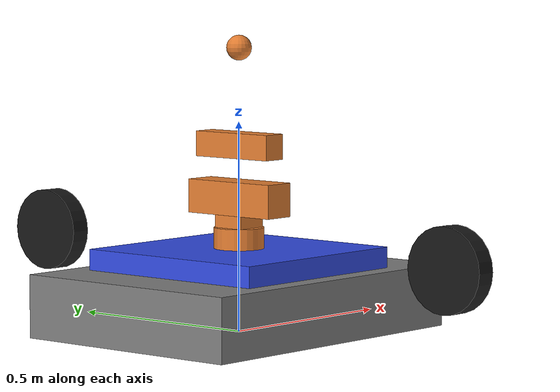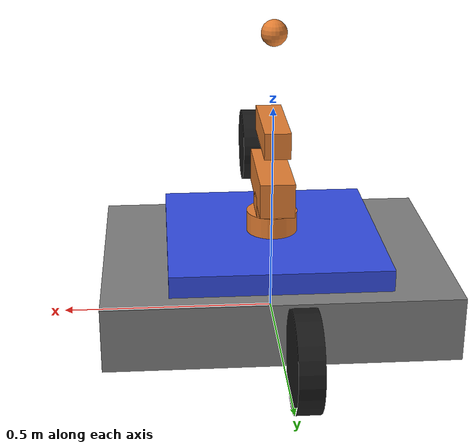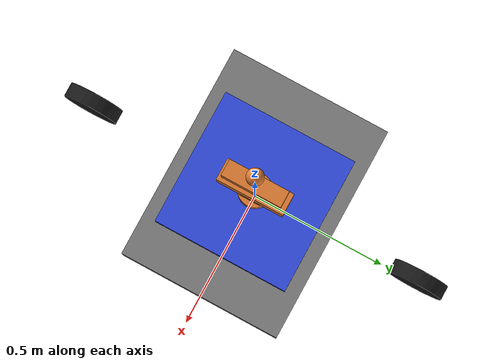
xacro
<?xml version="1.0"?>
<robot name="mobile_lift_arm" xmlns:xacro="http://www.ros.org/wiki/xacro">
  <!-- Include modules -->
  <xacro:include filename="$(find mobile_lift_arm)/urdf/base_vehicle.xacro"/>
  <xacro:include filename="$(find mobile_lift_arm)/urdf/scissor_lift.xacro"/>
  <xacro:include filename="$(find mobile_lift_arm)/urdf/robot_arm.xacro"/>

  <!-- Base -->
  <xacro:base_vehicle prefix=""/>

  <!-- Lift mounted on base_link -->
  <xacro:scissor_lift parent="base_link"/>

  <!-- 3-DOF Arm mounted on lift top -->
  <xacro:robot_arm parent="lift_top_link"/>

  <!-- Gazebo-ros2-control plugin -->
  <gazebo>
    <plugin name="gazebo_ros2_control" filename="libgazebo_ros2_control.so">
      <parameters>$(find mobile_lift_arm)/config/ros2_controllers.yaml</parameters>
    </plugin>
  </gazebo>

  <!-- ros2_control interface -->
  <ros2_control name="GazeboSystem" type="system">
    <hardware>
      <plugin>gazebo_ros2_control/GazeboSystem</plugin>
    </hardware>

    <!-- diff drive joints (velocity cmd) -->
    <joint name="left_wheel_joint">
      <command_interface name="velocity"/>
      <state_interface name="position"/>
      <state_interface name="velocity"/>
    </joint>
    <joint name="right_wheel_joint">
      <command_interface name="velocity"/>
      <state_interface name="position"/>
      <state_interface name="velocity"/>
    </joint>

    <!-- lift prismatic (position cmd) -->
    <joint name="lift_joint">
      <command_interface name="position"/>
      <state_interface name="position"/>
      <state_interface name="velocity"/>
    </joint>

    <!-- arm (position cmd via trajectory controller) -->
    <joint name="arm_shoulder_yaw_joint">
      <command_interface name="position"/>
      <state_interface name="position"/>
      <state_interface name="velocity"/>
    </joint>
    <joint name="arm_shoulder_pitch_joint">
      <command_interface name="position"/>
      <state_interface name="position"/>
      <state_interface name="velocity"/>
    </joint>
    <joint name="arm_elbow_joint">
      <command_interface name="position"/>
      <state_interface name="position"/>
      <state_interface name="velocity"/>
    </joint>
  </ros2_control>

  <!-- Gazebo material friction etc. -->
  <gazebo reference="base_link">
    <kp>500000.0</kp>
    <kd>10.0</kd>
  </gazebo>
</robot>

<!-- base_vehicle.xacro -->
<robot xmlns:xacro="http://www.ros.org/wiki/xacro">
  <xacro:macro name="base_vehicle" params="prefix:= base_width:=0.6 base_length:=0.8 base_height:=0.15 wheel_radius:=0.1 wheel_thickness:=0.05">
    <!-- Base link -->
    <link name="${prefix}base_link">
      <inertial>
        <origin xyz="0 0 ${base_height/2}" rpy="0 0 0"/>
        <mass value="20.0"/>
        <inertia ixx="0.6" ixy="0" ixz="0" iyy="0.6" iyz="0" izz="0.6"/>
      </inertial>
      <visual>
        <origin xyz="0 0 ${base_height/2}" rpy="0 0 0"/>
        <geometry>
          <box size="${base_length} ${base_width} ${base_height}"/>
        </geometry>
        <material name="gray"><color rgba="0.5 0.5 0.5 1"/></material>
      </visual>
      <collision>
        <origin xyz="0 0 ${base_height/2}" rpy="0 0 0"/>
        <geometry>
          <box size="${base_length} ${base_width} ${base_height}"/>
        </geometry>
      </collision>
    </link>

    <!-- Wheels (left/right) -->
    <link name="left_wheel_link">
      <inertial><mass value="2"/><inertia ixx="0.02" iyy="0.02" izz="0.02" ixy="0" ixz="0" iyz="0"/></inertial>
      <visual>
        <origin xyz="0 ${base_width/2 + wheel_thickness/2} ${wheel_radius}" rpy="0 1.5708 0"/>
        <geometry><cylinder radius="${wheel_radius}" length="${wheel_thickness}"/></geometry>
        <material name="black"><color rgba="0.1 0.1 0.1 1"/></material>
      </visual>
      <collision>
        <origin xyz="0 ${base_width/2 + wheel_thickness/2} ${wheel_radius}" rpy="0 1.5708 0"/>
        <geometry><cylinder radius="${wheel_radius}" length="${wheel_thickness}"/></geometry>
      </collision>
    </link>

    <link name="right_wheel_link">
      <inertial><mass value="2"/><inertia ixx="0.02" iyy="0.02" izz="0.02" ixy="0" ixz="0" iyz="0"/></inertial>
      <visual>
        <origin xyz="0 -${base_width/2 + wheel_thickness/2} ${wheel_radius}" rpy="0 1.5708 0"/>
        <geometry><cylinder radius="${wheel_radius}" length="${wheel_thickness}"/></geometry>
        <material name="black"><color rgba="0.1 0.1 0.1 1"/></material>
      </visual>
      <collision>
        <origin xyz="0 -${base_width/2 + wheel_thickness/2} ${wheel_radius}" rpy="0 1.5708 0"/>
        <geometry><cylinder radius="${wheel_radius}" length="${wheel_thickness}"/></geometry>
      </collision>
    </link>

    <joint name="left_wheel_joint" type="continuous">
      <parent link="${prefix}base_link"/>
      <child link="left_wheel_link"/>
      <origin xyz="0 ${base_width/2} ${wheel_radius}" rpy="0 0 0"/>
      <axis xyz="0 1 0"/>
      <limit effort="10" velocity="20"/>
    </joint>

    <joint name="right_wheel_joint" type="continuous">
      <parent link="${prefix}base_link"/>
      <child link="right_wheel_link"/>
      <origin xyz="0 -${base_width/2} ${wheel_radius}" rpy="0 0 0"/>
      <axis xyz="0 1 0"/>
      <limit effort="10" velocity="20"/>
    </joint>
  </xacro:macro>
</robot>

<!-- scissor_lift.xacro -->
<robot xmlns:xacro="http://www.ros.org/wiki/xacro">
  <xacro:macro name="scissor_lift" params="parent lift_height_min:=0.0 lift_height_max:=1.2 top_size_xy:=0.5 top_thickness:=0.05">
    <!-- Moving table (top platform) -->
    <link name="lift_link">
      <inertial>
        <origin xyz="0 0 ${top_thickness/2}" rpy="0 0 0"/>
        <mass value="8.0"/>
        <inertia ixx="0.08" ixy="0" ixz="0" iyy="0.08" iyz="0" izz="0.08"/>
      </inertial>
      <visual>
        <origin xyz="0 0 ${top_thickness/2}" rpy="0 0 0"/>
        <geometry>
          <box size="${top_size_xy} ${top_size_xy} ${top_thickness}"/>
        </geometry>
        <material name="blue"><color rgba="0.2 0.3 0.9 1"/></material>
      </visual>
      <collision>
        <origin xyz="0 0 ${top_thickness/2}" rpy="0 0 0"/>
        <geometry>
          <box size="${top_size_xy} ${top_size_xy} ${top_thickness}"/>
        </geometry>
      </collision>
    </link>

    <!-- Prismatic joint to simulate lift -->
    <joint name="lift_joint" type="prismatic">
      <parent link="${parent}"/>
      <child link="lift_link"/>
      <origin xyz="0 0 0.15" rpy="0 0 0"/>
      <axis xyz="0 0 1"/>
      <limit lower="${lift_height_min}" upper="${lift_height_max}" effort="500" velocity="0.2"/>
      <dynamics damping="5.0" friction="0.1"/>
    </joint>

    <!-- Top link for mounting the arm -->
    <link name="lift_top_link">
      <visual>
        <origin xyz="0 0 ${top_thickness}" rpy="0 0 0"/>
        <geometry><sphere radius="0.01"/></geometry>
        <material name="invisible"><color rgba="0 0 0 0"/></material>
      </visual>
    </link>

    <joint name="lift_top_fixed" type="fixed">
      <parent link="lift_link"/>
      <child link="lift_top_link"/>
    </joint>
  </xacro:macro>
</robot>

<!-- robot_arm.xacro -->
<robot xmlns:xacro="http://www.ros.org/wiki/xacro">
  <xacro:macro name="robot_arm" params="parent">
    <link name="arm_base_link">
      <inertial><mass value="3"/><inertia ixx="0.03" iyy="0.03" izz="0.03" ixy="0" ixz="0" iyz="0"/></inertial>
      <visual>
        <origin xyz="0 0 0.05" rpy="0 0 0"/>
        <geometry><cylinder radius="0.06" length="0.1"/></geometry>
        <material name="orange"><color rgba="0.9 0.5 0.2 1"/></material>
      </visual>
    </link>

    <joint name="arm_base_fixed" type="fixed">
      <parent link="${parent}"/>
      <child link="arm_base_link"/>
    </joint>

    <!-- Joint 1: shoulder yaw -->
    <link name="arm_shoulder_yaw_link">
      <inertial><mass value="2"/><inertia ixx="0.02" iyy="0.02" izz="0.02" ixy="0" ixz="0" iyz="0"/></inertial>
      <visual>
        <geometry><box size="0.08 0.08 0.15"/></geometry>
        <material name="orange"/>
      </visual>
    </link>
    <joint name="arm_shoulder_yaw_joint" type="revolute">
      <parent link="arm_base_link"/>
      <child link="arm_shoulder_yaw_link"/>
      <origin xyz="0 0 0.07" rpy="0 0 0"/>
      <axis xyz="0 0 1"/>
      <limit lower="-3.14" upper="3.14" effort="30" velocity="1.5"/>
      <dynamics damping="0.3"/>
    </joint>

    <!-- Joint 2: shoulder pitch -->
    <link name="arm_shoulder_pitch_link">
      <inertial><mass value="2"/><inertia ixx="0.02" iyy="0.02" izz="0.02" ixy="0" ixz="0" iyz="0"/></inertial>
      <visual>
        <geometry><box size="0.08 0.25 0.08"/></geometry>
        <material name="orange"/>
      </visual>
    </link>
    <joint name="arm_shoulder_pitch_joint" type="revolute">
      <parent link="arm_shoulder_yaw_link"/>
      <child link="arm_shoulder_pitch_link"/>
      <origin xyz="0 0 0.1" rpy="0 0 0"/>
      <axis xyz="0 1 0"/>
      <limit lower="-1.57" upper="1.57" effort="30" velocity="1.2"/>
      <dynamics damping="0.3"/>
    </joint>

    <!-- Joint 3: elbow -->
    <link name="arm_elbow_link">
      <inertial><mass value="1.5"/><inertia ixx="0.015" iyy="0.015" izz="0.015" ixy="0" ixz="0" iyz="0"/></inertial>
      <visual>
        <geometry><box size="0.06 0.22 0.06"/></geometry>
        <material name="orange"/>
      </visual>
    </link>
    <joint name="arm_elbow_joint" type="revolute">
      <parent link="arm_shoulder_pitch_link"/>
      <child link="arm_elbow_link"/>
      <origin xyz="0 0 0.125" rpy="0 0 0"/>
      <axis xyz="0 1 0"/>
      <limit lower="-1.57" upper="1.57" effort="20" velocity="1.2"/>
      <dynamics damping="0.3"/>
    </joint>

    <!-- Simple end-effector -->
    <link name="ee_link">
      <inertial><mass value="0.5"/><inertia ixx="0.005" iyy="0.005" izz="0.005" ixy="0" ixz="0" iyz="0"/></inertial>
      <visual>
        <origin xyz="0 0 0.12" rpy="0 0 0"/>
        <geometry><sphere radius="0.03"/></geometry>
        <material name="orange"/>
      </visual>
    </link>
    <joint name="ee_fixed" type="fixed">
      <parent link="arm_elbow_link"/>
      <child link="ee_link"/>
      <origin xyz="0 0 0.11" rpy="0 0 0"/>
    </joint>
  </xacro:macro>
</robot>
